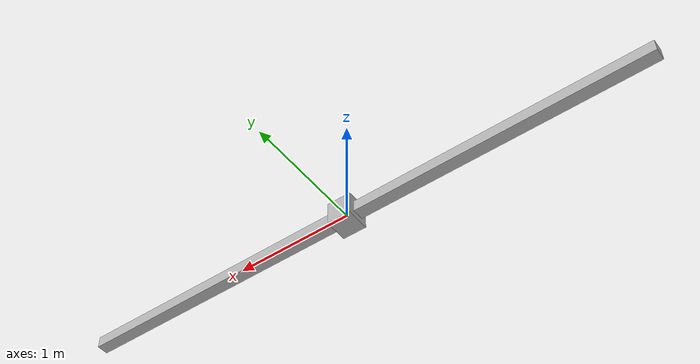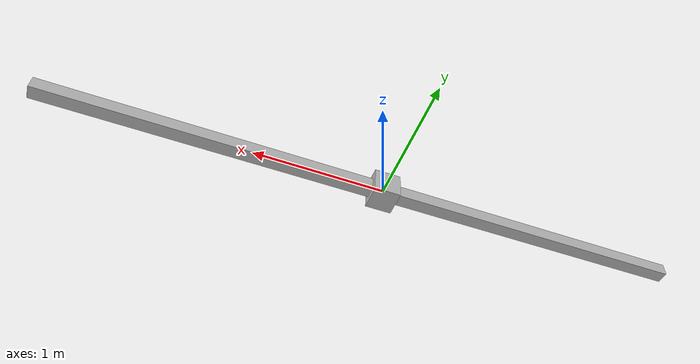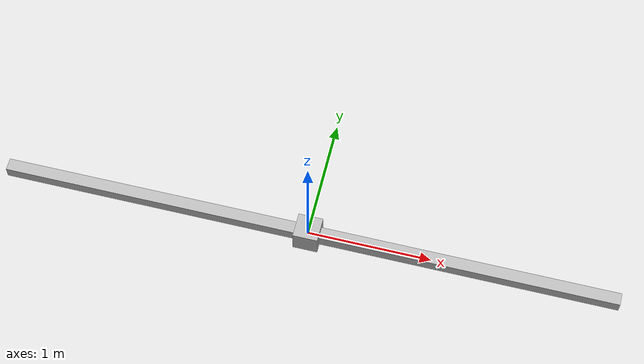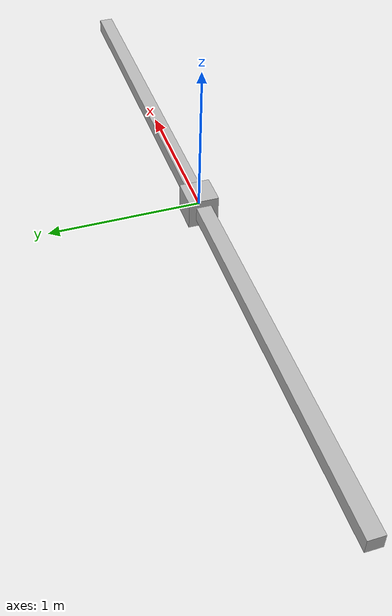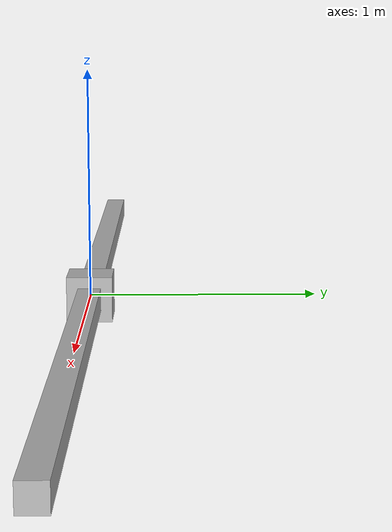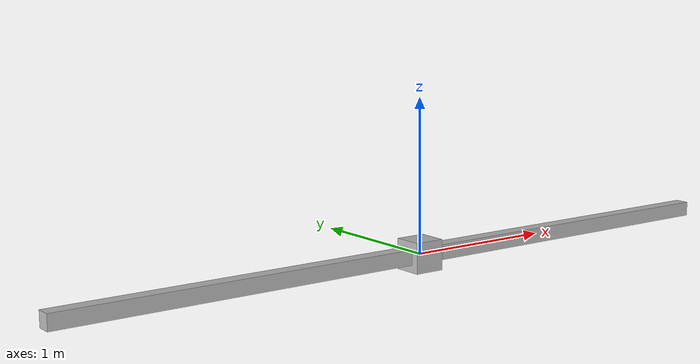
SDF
<sdf version="1.6">
  <model name="my_robot">
    <link name="base_link">
      <pose> 0 0 0 0 0 0 </pose>
      <!-- Small box for base_link -->
      <visual name="base_visual">
        <geometry>
          <box>
            <size>0.2 0.2 0.2</size>
          </box>
        </geometry>
      </visual>
    </link>

    <link name="moving_link">
      <pose> 0 0 0 0 0 0 </pose>
      <!-- Long box for moving_link -->
      <visual name="moving_visual">
        <geometry>
          <box>
            <size>5.0 0.1 0.1</size>
          </box>
        </geometry>
      </visual>
    </link>

    <link name="sensor_link_00">
      <pose> 0 0 0 0 1.57079632679 0 </pose>
      <sensor name="single_point_lidar" type="ray">
        <always_on>true</always_on>
        <update_rate>240</update_rate>
        <visualize>true
        </visualize>
        <ray>
          <scan>
            <horizontal>
              <samples>3</samples>
              <resolution>1</resolution>
              <min_angle>-0.0314159</min_angle>
              <max_angle>0.0314159</max_angle>
            </horizontal>
            <vertical>
              <samples>3</samples>
              <resolution>1</resolution>
              <min_angle>-0.0314159</min_angle>
              <max_angle>0.0314159</max_angle>
            </vertical>
          </scan>
          <range>
            <min>0.09</min>
            <max>3.0</max>
            <resolution>0.001</resolution>
          </range>
          <noise>
            <type>gaussian</type>
            <mean>0.0</mean>
            <stddev>0.0015</stddev>
          </noise>
        </ray>
        <plugin filename="libgazebo_ros_range.so" name="single_point_lidar_plugin">
          <robotNamespace></robotNamespace>
          <frameName>range_link</frameName>
          <topicName>range</topicName>
          <radiation>ultrasound</radiation>
          <fov>0.0628319</fov>
          <gaussianNoise>0.0</gaussianNoise>
          <updateRate>240</updateRate>
        </plugin>
      </sensor>
    </link>

    <link name="sensor_link_01">
      <pose> 0 0 0 0 1.57079632679 0 </pose>
      <sensor name="optical_flow_01_camera" type="camera">
        <always_on>true</always_on>
        <update_rate>120</update_rate>
        <visualize>true</visualize>
        <topic>/optical_flow_01_camera</topic>
        <camera>
          <horizontal_fov>0.53</horizontal_fov>
          <image>
            <width>64</width>
            <height>64</height>
            <format>L8</format>
          </image>
          <clip>
            <near>0.08</near>
            <far>40</far>
          </clip>
          <noise>
            <type>gaussian</type>
            <mean>0.0</mean>
            <stddev>0.001</stddev>
          </noise>
        </camera>
        <plugin name="opticalflow_01_plugin" filename="libgazebo_ros_optical_flow.so">
          <robotNamespace></robotNamespace>
          <cameraName>optical_flow_01_camera</cameraName>
          <alwaysOn>true</alwaysOn>
          <outputRate>0</outputRate>
          <flowFeatureThreshold>30</flowFeatureThreshold>
          <flowValueThreshold>3000</flowValueThreshold>
          <topicName>optical_flow</topicName>
          <deltaTopicName>optical_flow_delta</deltaTopicName>
        </plugin>
      </sensor>
    </link>

    <link name="sensor_link_02">
      <pose>4.0 0.0 0.0 0.0 1.57079632679 0.0</pose>
      <sensor name="optical_flow_02_camera" type="camera">
        <always_on>true</always_on>
        <update_rate>120</update_rate>
        <visualize>true</visualize>
        <topic>/optical_flow_02_camera</topic>
        <camera>
          <horizontal_fov>0.53</horizontal_fov>
          <image>
            <width>64</width>
            <height>64</height>
            <format>L8</format>
          </image>
          <clip>
            <near>0.08</near>
            <far>40</far>
          </clip>
          <noise>
            <type>gaussian</type>
            <mean>0.0</mean>
            <stddev>0.001</stddev>
          </noise>
        </camera>
        <plugin name="opticalflow_02_plugin" filename="libgazebo_ros_optical_flow.so">
          <robotNamespace></robotNamespace>
          <cameraName>optical_flow_02_camera</cameraName>
          <alwaysOn>true</alwaysOn>
          <outputRate>0</outputRate>
          <flowFeatureThreshold>30</flowFeatureThreshold>
          <flowValueThreshold>3000</flowValueThreshold>
          <topicName>optical_flow</topicName>
          <deltaTopicName>optical_flow_delta</deltaTopicName>
        </plugin>
      </sensor>
    </link>

    <link name="sensor_link_03">
      <pose>8.0 0.0 0.0 0.0 1.57079632679 0.0</pose>
      <sensor name="optical_flow_03_camera" type="camera">
        <always_on>true</always_on>
        <update_rate>120</update_rate>
        <visualize>true</visualize>
        <topic>/optical_flow_03_camera</topic>
        <camera>
          <horizontal_fov>0.53</horizontal_fov>
          <image>
            <width>64</width>
            <height>64</height>
            <format>L8</format>
          </image>
          <clip>
            <near>0.08</near>
            <far>40</far>
          </clip>
          <noise>
            <type>gaussian</type>
            <mean>0.0</mean>
            <stddev>0.001</stddev>
          </noise>
        </camera>
        <plugin name="opticalflow_03_plugin" filename="libgazebo_ros_optical_flow.so">
          <robotNamespace></robotNamespace>
          <cameraName>optical_flow_03_camera</cameraName>
          <alwaysOn>true</alwaysOn>
          <outputRate>0</outputRate>
          <flowFeatureThreshold>30</flowFeatureThreshold>
          <flowValueThreshold>3000</flowValueThreshold>
          <topicName>optical_flow</topicName>
          <deltaTopicName>optical_flow_delta</deltaTopicName>
        </plugin>
      </sensor>
    </link>

    <link name="sensor_link_04">
      <pose>12.0 0.0 0.0 0.0 1.57079632679 0.0</pose>
      <sensor name="optical_flow_04_camera" type="camera">
        <always_on>true</always_on>
        <update_rate>120</update_rate>
        <visualize>true</visualize>
        <topic>/optical_flow_04_camera</topic>
        <camera>
          <horizontal_fov>0.53</horizontal_fov>
          <image>
            <width>64</width>
            <height>64</height>
            <format>L8</format>
          </image>
          <clip>
            <near>0.08</near>
            <far>40</far>
          </clip>
          <noise>
            <type>gaussian</type>
            <mean>0.0</mean>
            <stddev>0.001</stddev>
          </noise>
        </camera>
        <plugin name="opticalflow_04_plugin" filename="libgazebo_ros_optical_flow.so">
          <robotNamespace></robotNamespace>
          <cameraName>optical_flow_04_camera</cameraName>
          <alwaysOn>true</alwaysOn>
          <outputRate>0</outputRate>
          <flowFeatureThreshold>30</flowFeatureThreshold>
          <flowValueThreshold>3000</flowValueThreshold>
          <topicName>optical_flow</topicName>
          <deltaTopicName>optical_flow_delta</deltaTopicName>
        </plugin>
      </sensor>
    </link>

    <link name="sensor_link_05">
      <pose>16.0 0.0 0.0 0.0 1.57079632679 0.0</pose>
      <sensor name="optical_flow_05_camera" type="camera">
        <always_on>true</always_on>
        <update_rate>120</update_rate>
        <visualize>true</visualize>
        <topic>/optical_flow_05_camera</topic>
        <camera>
          <horizontal_fov>0.53</horizontal_fov>
          <image>
            <width>64</width>
            <height>64</height>
            <format>L8</format>
          </image>
          <clip>
            <near>0.08</near>
            <far>40</far>
          </clip>
          <noise>
            <type>gaussian</type>
            <mean>0.0</mean>
            <stddev>0.001</stddev>
          </noise>
        </camera>
        <plugin name="opticalflow_05_plugin" filename="libgazebo_ros_optical_flow.so">
          <robotNamespace></robotNamespace>
          <cameraName>optical_flow_05_camera</cameraName>
          <alwaysOn>true</alwaysOn>
          <outputRate>0</outputRate>
          <flowFeatureThreshold>30</flowFeatureThreshold>
          <flowValueThreshold>3000</flowValueThreshold>
          <topicName>optical_flow</topicName>
          <deltaTopicName>optical_flow_delta</deltaTopicName>
        </plugin>
      </sensor>
    </link>

    <link name="sensor_link_06">
      <pose>20.0 0.0 0.0 0.0 1.57079632679 0.0</pose>
      <sensor name="optical_flow_06_camera" type="camera">
        <always_on>true</always_on>
        <update_rate>120</update_rate>
        <visualize>true</visualize>
        <topic>/optical_flow_06_camera</topic>
        <camera>
          <horizontal_fov>0.53</horizontal_fov>
          <image>
            <width>64</width>
            <height>64</height>
            <format>L8</format>
          </image>
          <clip>
            <near>0.08</near>
            <far>40</far>
          </clip>
          <noise>
            <type>gaussian</type>
            <mean>0.0</mean>
            <stddev>0.001</stddev>
          </noise>
        </camera>
        <plugin name="opticalflow_06_plugin" filename="libgazebo_ros_optical_flow.so">
          <robotNamespace></robotNamespace>
          <cameraName>optical_flow_06_camera</cameraName>
          <alwaysOn>true</alwaysOn>
          <outputRate>0</outputRate>
          <flowFeatureThreshold>30</flowFeatureThreshold>
          <flowValueThreshold>3000</flowValueThreshold>
          <topicName>optical_flow</topicName>
          <deltaTopicName>optical_flow_delta</deltaTopicName>
        </plugin>
      </sensor>
    </link>

    <link name="sensor_link_07">
      <pose>24.0 0.0 0.0 0.0 1.57079632679 0.0</pose>
      <sensor name="optical_flow_07_camera" type="camera">
        <always_on>true</always_on>
        <update_rate>120</update_rate>
        <visualize>true</visualize>
        <topic>/optical_flow_07_camera</topic>
        <camera>
          <horizontal_fov>0.53</horizontal_fov>
          <image>
            <width>64</width>
            <height>64</height>
            <format>L8</format>
          </image>
          <clip>
            <near>0.08</near>
            <far>40</far>
          </clip>
          <noise>
            <type>gaussian</type>
            <mean>0.0</mean>
            <stddev>0.001</stddev>
          </noise>
        </camera>
        <plugin name="opticalflow_07_plugin" filename="libgazebo_ros_optical_flow.so">
          <robotNamespace></robotNamespace>
          <cameraName>optical_flow_07_camera</cameraName>
          <alwaysOn>true</alwaysOn>
          <outputRate>0</outputRate>
          <flowFeatureThreshold>30</flowFeatureThreshold>
          <flowValueThreshold>3000</flowValueThreshold>
          <topicName>optical_flow</topicName>
          <deltaTopicName>optical_flow_delta</deltaTopicName>
        </plugin>
      </sensor>
    </link>

    <link name="sensor_link_08">
      <pose>28.0 0.0 0.0 0.0 1.57079632679 0.0</pose>
      <sensor name="optical_flow_08_camera" type="camera">
        <always_on>true</always_on>
        <update_rate>120</update_rate>
        <visualize>true</visualize>
        <topic>/optical_flow_08_camera</topic>
        <camera>
          <horizontal_fov>0.53</horizontal_fov>
          <image>
            <width>64</width>
            <height>64</height>
            <format>L8</format>
          </image>
          <clip>
            <near>0.08</near>
            <far>40</far>
          </clip>
          <noise>
            <type>gaussian</type>
            <mean>0.0</mean>
            <stddev>0.001</stddev>
          </noise>
        </camera>
        <plugin name="opticalflow_08_plugin" filename="libgazebo_ros_optical_flow.so">
          <robotNamespace></robotNamespace>
          <cameraName>optical_flow_08_camera</cameraName>
          <alwaysOn>true</alwaysOn>
          <outputRate>0</outputRate>
          <flowFeatureThreshold>30</flowFeatureThreshold>
          <flowValueThreshold>3000</flowValueThreshold>
          <topicName>optical_flow</topicName>
          <deltaTopicName>optical_flow_delta</deltaTopicName>
        </plugin>
      </sensor>
    </link>

    <!-- Static Joint to hold base_link in the air -->
    <joint name="static_joint" type="fixed">
      <parent>world</parent>
      <child>base_link</child>
    </joint>

    <joint name="linear_joint" type="prismatic">
      <parent>base_link</parent>
      <child>moving_link</child>
      <axis>
        <xyz>0 1 0</xyz>
        <limit>
          <lower>-1e6</lower>
          <upper>1e6</upper>
        </limit>
      </axis>
    </joint>

    <joint name="sensor_joint00" type="fixed">
      <parent>moving_link</parent>
      <child>sensor_link_00</child>
    </joint>

    <joint name="sensor_joint01" type="fixed">
      <parent>moving_link</parent>
      <child>sensor_link_01</child>
    </joint>

    <joint name="sensor_joint02" type="fixed">
      <parent>moving_link</parent>
      <child>sensor_link_02</child>
    </joint>

    <joint name="sensor_joint03" type="fixed">
      <parent>moving_link</parent>
      <child>sensor_link_03</child>
    </joint>

    <joint name="sensor_joint04" type="fixed">
      <parent>moving_link</parent>
      <child>sensor_link_04</child>
    </joint>

    <joint name="sensor_joint05" type="fixed">
      <parent>moving_link</parent>
      <child>sensor_link_05</child>
    </joint>

    <joint name="sensor_joint06" type="fixed">
      <parent>moving_link</parent>
      <child>sensor_link_06</child>
    </joint>

    <joint name="sensor_joint07" type="fixed">
      <parent>moving_link</parent>
      <child>sensor_link_07</child>
    </joint>

    <joint name="sensor_joint08" type="fixed">
      <parent>moving_link</parent>
      <child>sensor_link_08</child>
    </joint>

    <!-- body position/velocity tracker -->
    <plugin name="moving_link_state_tracker" filename="libgazebo_ros_p3d.so">
      <alwaysOn>true</alwaysOn>
      <frameName>base_link</frameName>
      <bodyName>moving_link</bodyName>
      <topicName>odom</topicName>
      <updateRate>240</updateRate>
    </plugin>

    <!-- ros_control plugin -->
    <plugin name="gazebo_ros_control" filename="libgazebo_ros_control.so">
      <robotNamespace>/optical_flow_tester</robotNamespace>
      <robotSimType>gazebo_ros_control/DefaultRobotHWSim</robotSimType>
    </plugin>
  </model>
</sdf>
